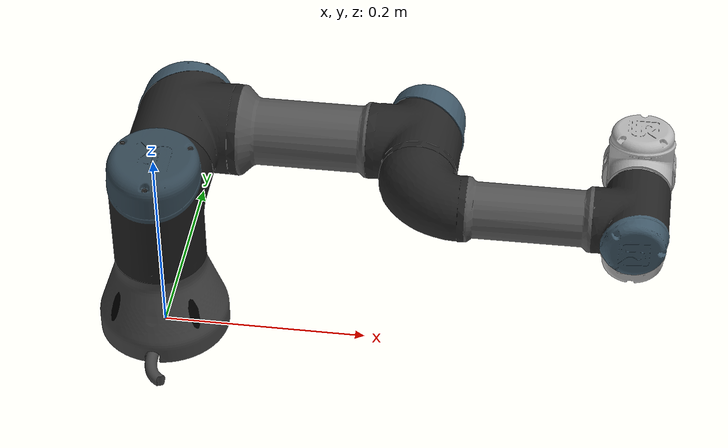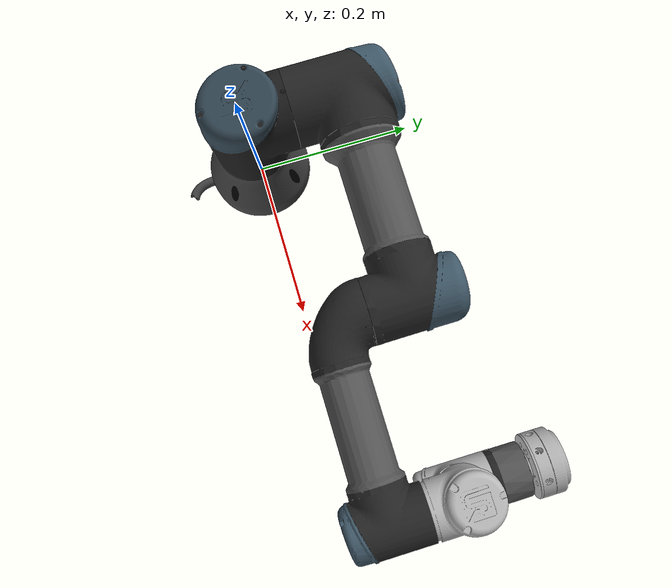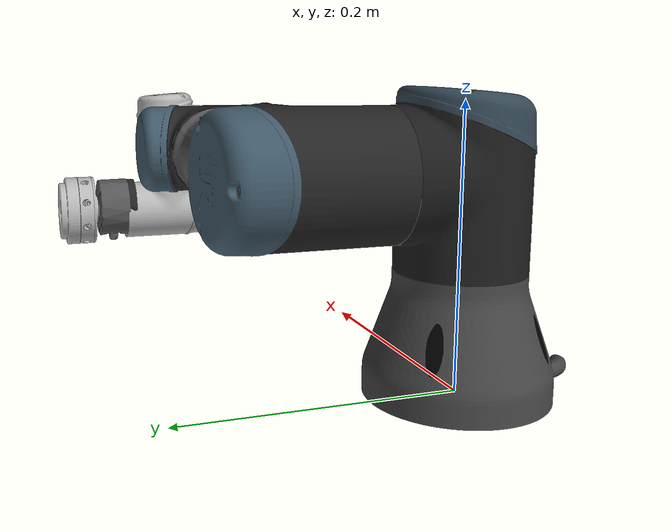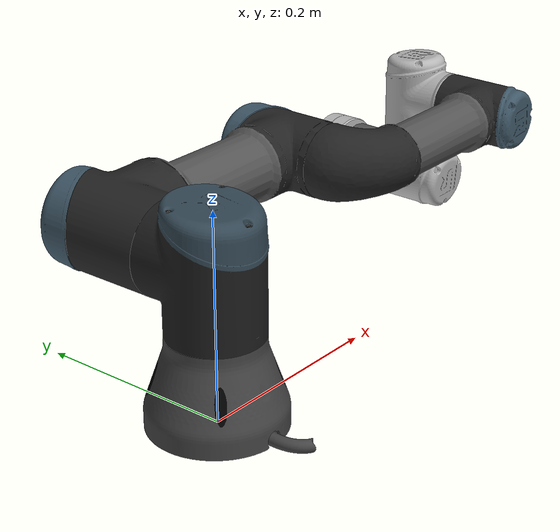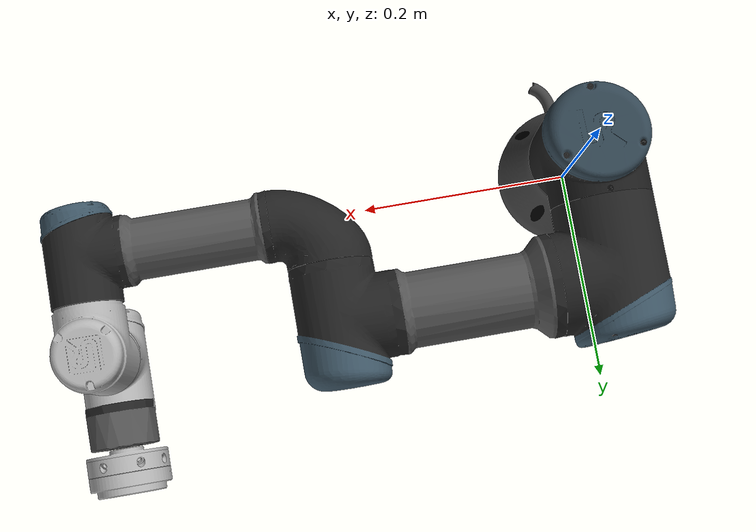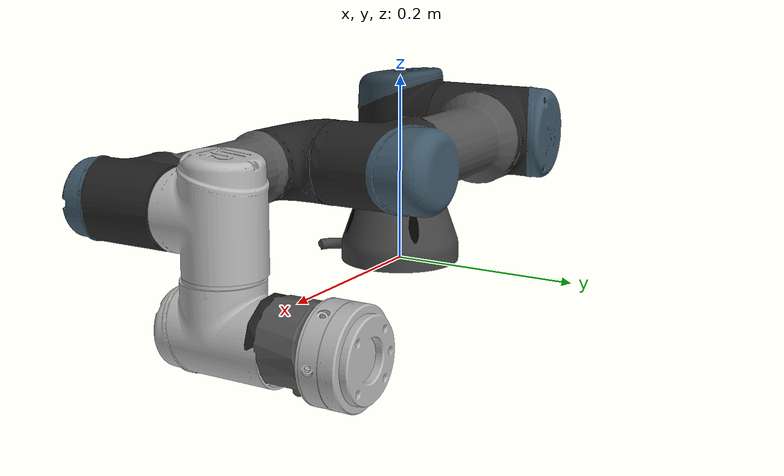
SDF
<sdf version='1.6'>
  <model name='ur3'>
    <link name='base_link'>
      <pose frame=''>0 0 0 0 -0 0</pose>
      <inertial>
        <pose frame=''>0 0 0 0 -0 0</pose>
        <mass>2</mass>
        <inertia>
          <ixx>0.00305317</ixx>
          <ixy>0</ixy>
          <ixz>0</ixz>
          <iyy>0.00305317</iyy>
          <iyz>0</iyz>
          <izz>0.005625</izz>
        </inertia>
      </inertial>
      <collision name='base_link_collision'>
        <pose frame=''>0 0 0 0 -0 0</pose>
        <geometry>
          <mesh>
            <scale>1 1 1</scale>
            <uri>model://ur_description/meshes/ur3/collision/base.stl</uri>
          </mesh>
        </geometry>
      </collision>
      <visual name='base_link_visual'>
        <pose frame=''>0 0 0 0 -0 0</pose>
        <geometry>
          <mesh>
            <scale>1 1 1</scale>
            <uri>model://ur_description/meshes/ur3/visual/base.dae</uri>
          </mesh>
        </geometry>
      </visual>
    </link>
    <joint name='world_joint' type='fixed'>
      <child>base_link</child>
      <parent>world</parent>
    </joint>
    <link name='shoulder_link'>
      <pose frame=''>0 0 0.1519 0 -0 0</pose>
      <inertial>
        <pose frame=''>0 0 0 0 -0 0</pose>
        <mass>2</mass>
        <inertia>
          <ixx>0.00809316</ixx>
          <ixy>0</ixy>
          <ixz>0</ixz>
          <iyy>0.00809316</iyy>
          <iyz>0</iyz>
          <izz>0.005625</izz>
        </inertia>
      </inertial>
      <collision name='shoulder_link_collision'>
        <pose frame=''>0 0 0 0 -0 0</pose>
        <geometry>
          <mesh>
            <scale>1 1 1</scale>
            <uri>model://ur_description/meshes/ur3/collision/shoulder.stl</uri>
          </mesh>
        </geometry>
        <surface>
          <contact>
            <ode/>
          </contact>
          <friction>
            <ode/>
          </friction>
        </surface>
      </collision>
      <visual name='shoulder_link_visual'>
        <pose frame=''>0 0 0 0 -0 0</pose>
        <geometry>
          <mesh>
            <scale>1 1 1</scale>
            <uri>model://ur_description/meshes/ur3/visual/shoulder.dae</uri>
          </mesh>
        </geometry>
        <material>
          <script>
            <uri>__default__</uri>
            <name>__default__</name>
          </script>
        </material>
      </visual>
      <gravity>1</gravity>
      <velocity_decay/>
      <self_collide>1</self_collide>
    </link>
    <joint name='shoulder_pan_joint' type='revolute'>
      <child>shoulder_link</child>
      <parent>base_link</parent>
      <axis>
        <xyz>0 0 1</xyz>
        <limit>
          <lower>-6.28319</lower>
          <upper>6.28319</upper>
          <effort>330</effort>
          <velocity>2.16</velocity>
        </limit>
        <dynamics>
          <damping>0</damping>
          <friction>0</friction>
          <spring_reference>0</spring_reference>
          <spring_stiffness>0</spring_stiffness>
        </dynamics>
        <use_parent_model_frame>1</use_parent_model_frame>
      </axis>
    </joint>
    <link name='upper_arm_link'>
      <pose frame=''>0 0.1198 0.1519 3.14159 1.57079 3.14159</pose>
      <inertial>
        <pose frame=''>0 0 0.121825 0 -0 0</pose>
        <mass>3.42</mass>
        <inertia>
          <ixx>0.0217285</ixx>
          <ixy>0</ixy>
          <ixz>0</ixz>
          <iyy>0.0217285</iyy>
          <iyz>0</iyz>
          <izz>0.00961875</izz>
        </inertia>
      </inertial>
      <collision name='upper_arm_link_collision'>
        <pose frame=''>0 0 0 0 -0 0</pose>
        <geometry>
          <mesh>
            <scale>1 1 1</scale>
            <uri>model://ur_description/meshes/ur3/collision/upperarm.stl</uri>
          </mesh>
        </geometry>
        <surface>
          <contact>
            <ode/>
          </contact>
          <friction>
            <ode/>
          </friction>
        </surface>
      </collision>
      <visual name='upper_arm_link_visual'>
        <pose frame=''>0 0 0 0 -0 0</pose>
        <geometry>
          <mesh>
            <scale>1 1 1</scale>
            <uri>model://ur_description/meshes/ur3/visual/upperarm.dae</uri>
          </mesh>
        </geometry>
        <material>
          <script>
            <uri>__default__</uri>
            <name>__default__</name>
          </script>
        </material>
      </visual>
      <gravity>1</gravity>
      <velocity_decay/>
      <self_collide>1</self_collide>
    </link>
    <joint name='shoulder_lift_joint' type='revolute'>
      <child>upper_arm_link</child>
      <parent>shoulder_link</parent>
      <axis>
        <xyz>0 1 0</xyz>
        <limit>
          <lower>-6.28319</lower>
          <upper>6.28319</upper>
          <effort>330</effort>
          <velocity>2.16</velocity>
        </limit>
        <dynamics>
          <damping>0</damping>
          <friction>0</friction>
          <spring_reference>0</spring_reference>
          <spring_stiffness>0</spring_stiffness>
        </dynamics>
        <use_parent_model_frame>1</use_parent_model_frame>
      </axis>
    </joint>
    <link name='forearm_link'>
      <pose frame=''>0.24365 0.0273 0.1519 3.14159 1.57079 3.14159</pose>
      <inertial>
        <pose frame=''>0 0 0.106625 0 -0 0</pose>
        <mass>1.26</mass>
        <inertia>
          <ixx>0.00654681</ixx>
          <ixy>0</ixy>
          <ixz>0</ixz>
          <iyy>0.00654681</iyy>
          <iyz>0</iyz>
          <izz>0.00354375</izz>
        </inertia>
      </inertial>
      <collision name='forearm_link_collision'>
        <pose frame=''>0 0 0 0 -0 0</pose>
        <geometry>
          <mesh>
            <scale>1 1 1</scale>
            <uri>model://ur_description/meshes/ur3/collision/forearm.stl</uri>
          </mesh>
        </geometry>
        <surface>
          <contact>
            <ode/>
          </contact>
          <friction>
            <ode/>
          </friction>
        </surface>
      </collision>
      <visual name='forearm_link_visual'>
        <pose frame=''>0 0 0 0 -0 0</pose>
        <geometry>
          <mesh>
            <scale>1 1 1</scale>
            <uri>model://ur_description/meshes/ur3/visual/forearm.dae</uri>
          </mesh>
        </geometry>
        <material>
          <script>
            <uri>__default__</uri>
            <name>__default__</name>
          </script>
        </material>
      </visual>
      <gravity>1</gravity>
      <velocity_decay/>
      <self_collide>1</self_collide>
    </link>
    <joint name='elbow_joint' type='revolute'>
      <child>forearm_link</child>
      <parent>upper_arm_link</parent>
      <axis>
        <xyz>0 1 0</xyz>
        <limit>
          <lower>-3.14159</lower>
          <upper>3.14159</upper>
          <effort>150</effort>
          <velocity>3.15</velocity>
        </limit>
        <dynamics>
          <damping>0</damping>
          <friction>0</friction>
          <spring_reference>0</spring_reference>
          <spring_stiffness>0</spring_stiffness>
        </dynamics>
        <use_parent_model_frame>1</use_parent_model_frame>
      </axis>
    </joint>
    <link name='wrist_1_link'>
      <pose frame=''>0.4569 0.0273 0.1519 3.14159 0 3.14159</pose>
      <inertial>
        <pose frame=''>0 0.08505 0 0 -0 0</pose>
        <mass>0.8</mass>
        <inertia>
          <ixx>0.002085</ixx>
          <ixy>0</ixy>
          <ixz>0</ixz>
          <iyy>0.002085</iyy>
          <iyz>0</iyz>
          <izz>0.00225</izz>
        </inertia>
      </inertial>
      <collision name='wrist_1_link_collision'>
        <pose frame=''>0 0 0 0 -0 0</pose>
        <geometry>
          <mesh>
            <scale>1 1 1</scale>
            <uri>model://ur_description/meshes/ur3/collision/wrist1.stl</uri>
          </mesh>
        </geometry>
        <surface>
          <contact>
            <ode/>
          </contact>
          <friction>
            <ode/>
          </friction>
        </surface>
      </collision>
      <visual name='wrist_1_link_visual'>
        <pose frame=''>0 0 0 0 -0 0</pose>
        <geometry>
          <mesh>
            <scale>1 1 1</scale>
            <uri>model://ur_description/meshes/ur3/visual/wrist1.dae</uri>
          </mesh>
        </geometry>
        <material>
          <script>
            <uri>__default__</uri>
            <name>__default__</name>
          </script>
        </material>
      </visual>
      <gravity>1</gravity>
      <velocity_decay/>
      <self_collide>1</self_collide>
    </link>
    <joint name='wrist_1_joint' type='revolute'>
      <child>wrist_1_link</child>
      <parent>forearm_link</parent>
      <axis>
        <xyz>0 1 0</xyz>
        <limit>
          <lower>-6.28319</lower>
          <upper>6.28319</upper>
          <effort>54</effort>
          <velocity>3.2</velocity>
        </limit>
        <dynamics>
          <damping>0</damping>
          <friction>0</friction>
          <spring_reference>0</spring_reference>
          <spring_stiffness>0</spring_stiffness>
        </dynamics>
        <use_parent_model_frame>1</use_parent_model_frame>
      </axis>
    </joint>
    <link name='wrist_2_link'>
      <pose frame=''>0.4569 0.11235 0.1519 3.14159 0 3.14159</pose>
      <inertial>
        <pose frame=''>0 0 0.08535 0 -0 0</pose>
        <mass>0.8</mass>
        <inertia>
          <ixx>0.002085</ixx>
          <ixy>0</ixy>
          <ixz>0</ixz>
          <iyy>0.002085</iyy>
          <iyz>0</iyz>
          <izz>0.00225</izz>
        </inertia>
      </inertial>
      <collision name='wrist_2_link_collision'>
        <pose frame=''>0 0 0 0 -0 0</pose>
        <geometry>
          <mesh>
            <scale>1 1 1</scale>
            <uri>model://ur_description/meshes/ur3/collision/wrist2.stl</uri>
          </mesh>
        </geometry>
        <surface>
          <contact>
            <ode/>
          </contact>
          <friction>
            <ode/>
          </friction>
        </surface>
      </collision>
      <visual name='wrist_2_link_visual'>
        <pose frame=''>0 0 0 0 -0 0</pose>
        <geometry>
          <mesh>
            <scale>1 1 1</scale>
            <uri>model://ur_description/meshes/ur3/visual/wrist2.dae</uri>
          </mesh>
        </geometry>
        <material>
          <script>
            <uri>__default__</uri>
            <name>__default__</name>
          </script>
        </material>
      </visual>
      <gravity>1</gravity>
      <velocity_decay/>
      <self_collide>1</self_collide>
    </link>
    <joint name='wrist_2_joint' type='revolute'>
      <child>wrist_2_link</child>
      <parent>wrist_1_link</parent>
      <axis>
        <xyz>0 0 -1</xyz>
        <limit>
          <lower>-6.28319</lower>
          <upper>6.28319</upper>
          <effort>54</effort>
          <velocity>3.2</velocity>
        </limit>
        <dynamics>
          <damping>0</damping>
          <friction>0</friction>
          <spring_reference>0</spring_reference>
          <spring_stiffness>0</spring_stiffness>
        </dynamics>
        <use_parent_model_frame>1</use_parent_model_frame>
      </axis>
    </joint>
    <link name='wrist_3_link'>
      <pose frame=''>0.4569 0.11235 0.06655 3.14159 0 3.14159</pose>
      <inertial>
        <pose frame=''>0 0.098131 0 1.5708 -0 0</pose>
        <mass>0.65</mass>
        <inertia>
          <ixx>0.00139371</ixx>
          <ixy>9.99976e-18</ixy>
          <ixz>-1e-06</ixz>
          <iyy>0.00139671</iyy>
          <iyz>-1e-06</iyz>
          <izz>0.0003982</izz>
        </inertia>
      </inertial>
      <collision name='wrist_3_link_collision'>
        <pose frame=''>0 0 0 0 -0 0</pose>
        <geometry>
          <mesh>
            <scale>1 1 1</scale>
            <uri>model://ur_description/meshes/ur3/collision/wrist3.stl</uri>
          </mesh>
        </geometry>
        <surface>
          <contact>
            <ode/>
          </contact>
          <friction>
            <ode/>
          </friction>
        </surface>
      </collision>
      <collision name='wrist_3_link_fixed_joint_lump__ee_link_collision_1'>
        <pose frame=''>-0 0.0719 0 0 -0 1.5708</pose>
        <geometry>
          <box>
            <size>0.01 0.01 0.01</size>
          </box>
        </geometry>
        <surface>
          <contact>
            <ode/>
          </contact>
          <friction>
            <ode/>
          </friction>
        </surface>
      </collision>
      <collision name='wrist_3_link_fixed_joint_lump__ft300_mounting_plate_collision_2'>
        <pose frame=''>0 0.0819 0 -1.5708 0 0</pose>
        <geometry>
          <mesh>
            <scale>1 1 1</scale>
            <uri>model://robotiq_ft_sensor/meshes/collision/mountings/robotiq_ft300-G-062-COUPLING_G-50-4M6-1D6_20181119.STL</uri>
          </mesh>
        </geometry>
      </collision>
      <collision name='wrist_3_link_fixed_joint_lump__ft300_sensor_collision_3'>
        <pose frame=''>0 0.1234 0 -1.5708 -0 3.14159</pose>
        <geometry>
          <mesh>
            <scale>1 1 1</scale>
            <uri>model://robotiq_ft_sensor/meshes/collision/robotiq_ft300.STL</uri>
          </mesh>
        </geometry>
      </collision>
      <visual name='wrist_3_link_visual'>
        <pose frame=''>0 0 0 0 -0 0</pose>
        <geometry>
          <mesh>
            <scale>1 1 1</scale>
            <uri>model://ur_description/meshes/ur3/visual/wrist3.dae</uri>
          </mesh>
        </geometry>
        <material>
          <script>
            <uri>__default__</uri>
            <name>__default__</name>
          </script>
        </material>
      </visual>
      <visual name='wrist_3_link_fixed_joint_lump__ft300_mounting_plate_visual_1'>
        <pose frame=''>0 0.0819 0 -1.5708 0 0</pose>
        <geometry>
          <mesh>
            <scale>1 1 1</scale>
            <uri>model://robotiq_ft_sensor/meshes/visual/mountings/robotiq_ft300-G-062-COUPLING_G-50-4M6-1D6_20181119.STL</uri>
          </mesh>
        </geometry>
      </visual>
      <visual name='wrist_3_link_fixed_joint_lump__ft300_sensor_visual_2'>
        <pose frame=''>0 0.1234 0 -1.5708 -0 3.14159</pose>
        <geometry>
          <mesh>
            <scale>1 1 1</scale>
            <uri>model://robotiq_ft_sensor/meshes/visual/robotiq_ft300.STL</uri>
          </mesh>
        </geometry>
      </visual>
      <velocity_decay/>
      <gravity>1</gravity>
      <velocity_decay/>
      <self_collide>1</self_collide>
    </link>
    <joint name='wrist_3_joint' type='revolute'>
      <child>wrist_3_link</child>
      <parent>wrist_2_link</parent>
      <axis>
        <xyz>0 1 0</xyz>
        <limit>
          <lower>-6.28319</lower>
          <upper>6.28319</upper>
          <effort>54</effort>
          <velocity>3.2</velocity>
        </limit>
        <dynamics>
          <damping>0</damping>
          <friction>0</friction>
          <spring_reference>0</spring_reference>
          <spring_stiffness>0</spring_stiffness>
        </dynamics>
        <use_parent_model_frame>1</use_parent_model_frame>
      </axis>
    </joint>
    <static>0</static>
    <plugin name='ros_control' filename='libgazebo_ros_control.so'>
      <legacyModeNS>true</legacyModeNS>
    </plugin>
  </model>
</sdf>
